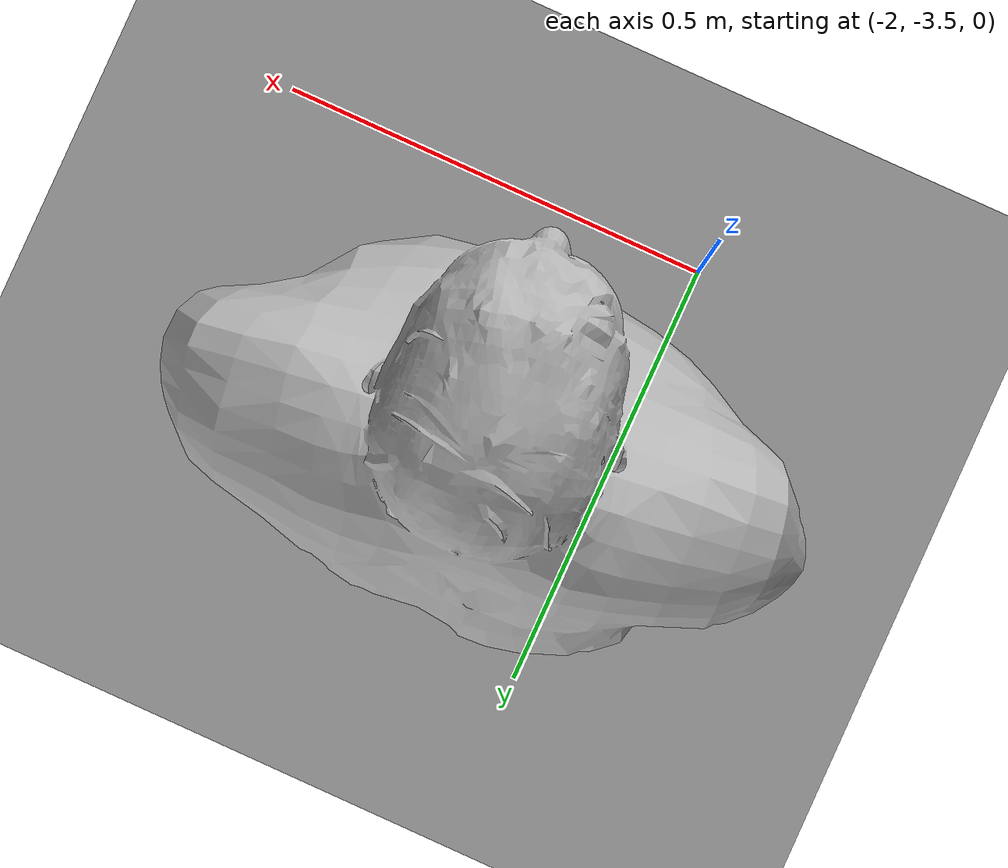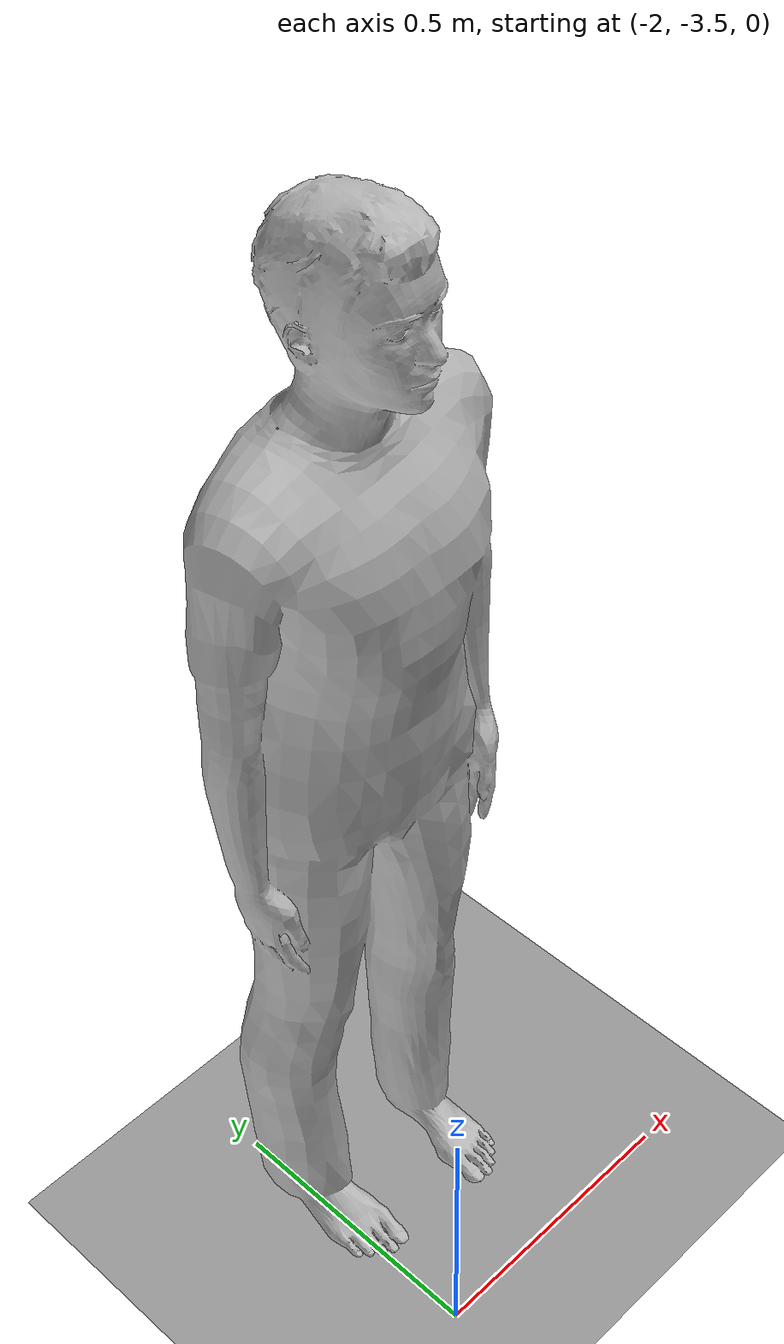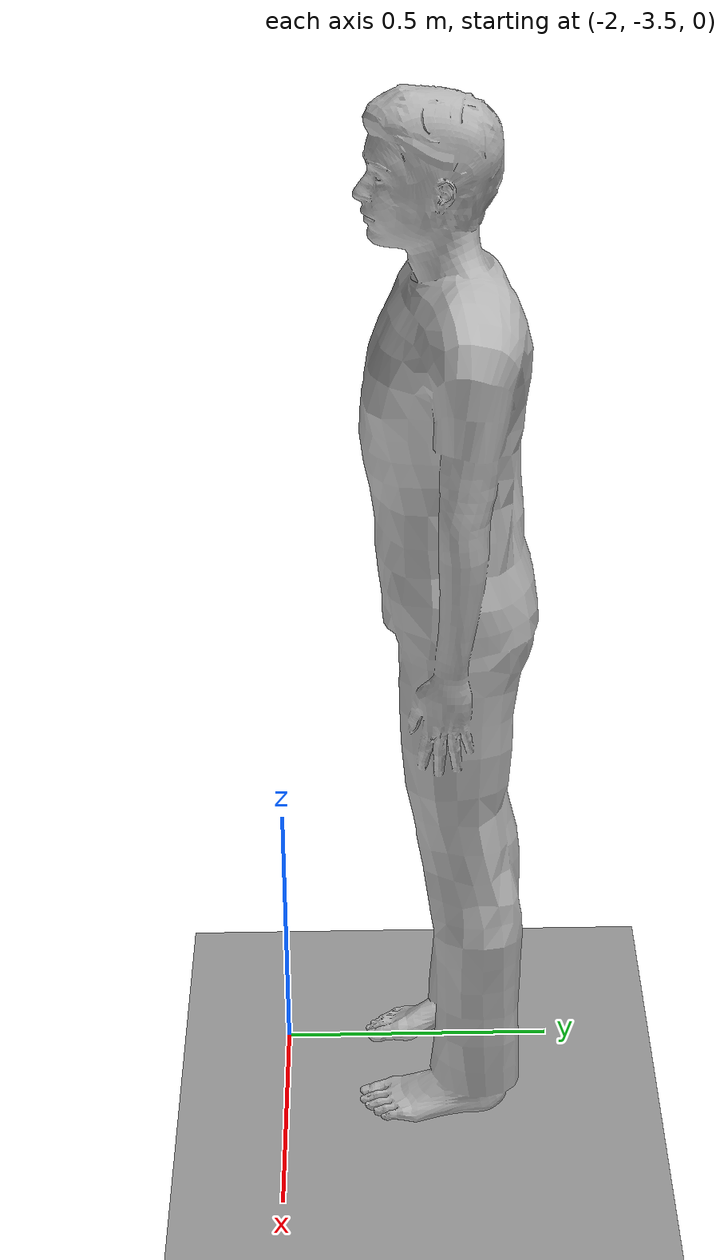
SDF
<sdf version="1.6">
 <world name="default">
  <light name="sun" type="directional">
   <pose>0 0 10 0 -0 0</pose>
   <diffuse>0.8 0.8 0.8 1</diffuse>
   <specular>0.2 0.2 0.2 1</specular>
   <attenuation>
    <range>1000</range>
    <constant>0.9</constant>
    <linear>0.01</linear>
    <quadratic>0.001</quadratic>
   </attenuation>
   <direction>0.5 0.1 -0.9</direction>
  </light>
  <scene><ambient>0.4 0.4 0.4 1</ambient><background>0.7 0.7 0.7 1</background><shadows>1</shadows></scene>
  <physics name="default_physics" default="0" type="ode">
   <max_step_size>0.01</max_step_size>
   <real_time_factor>1</real_time_factor>
   <real_time_update_rate>100</real_time_update_rate>
  </physics>
  <model name="ground_plane_0">
   <static>1</static>
   <link name="link">
    <collision name="collision">
     <geometry><plane><normal>0 0 1</normal><size>100 100</size></plane></geometry>
     <surface><friction><ode><mu>100</mu><mu2>50</mu2></ode></friction></surface>
    </collision>
    <visual name="visual">
     <cast_shadows>0</cast_shadows>
     <geometry><plane><normal>0 0 1</normal><size>100 100</size></plane></geometry>
     <material>
      <script><uri>file://media/materials/scripts/gazebo.material</uri><name>Gazebo/Grey</name></script>
     </material>
    </visual>
    <velocity_decay><linear>0</linear><angular>0</angular></velocity_decay>
   </link>
   <pose>0.497681 0 0 0 -0 0</pose>
  </model>
  <gravity>0 0 -9.8</gravity>
  <magnetic_field>6e-06 2.3e-05 -4.2e-05</magnetic_field>
  <atmosphere type="adiabatic"/>
  <spherical_coordinates>
   <surface_model>EARTH_WGS84</surface_model>
   <latitude_deg>0</latitude_deg>
   <longitude_deg>0</longitude_deg>
   <elevation>0</elevation>
   <heading_deg>0</heading_deg>
  </spherical_coordinates>
  <model name="person_standing">
   <link name="link">
    <inertial>
     <pose>0 -0.1 0.95 0 -0 0</pose>
     <mass>80</mass>
     <inertia><ixx>24.88</ixx><ixy>0</ixy><ixz>0</ixz><iyy>25.73</iyy><iyz>0</iyz><izz>2.48</izz></inertia>
    </inertial>
    <collision name="bottom">
     <pose>0 -0.1 0.01 0 -0 0</pose>
     <geometry><box><size>0.5 0.35 0.02</size></box></geometry>
    </collision>
    <collision name="person">
     <pose>0 0 0.02 0.04 -0 0</pose>
     <geometry><mesh><uri>model://person_standing/meshes/standing.dae</uri><scale>1 1 1</scale></mesh></geometry>
    </collision>
    <visual name="visual">
     <pose>0 0 0.02 0.04 -0 0</pose>
     <geometry><mesh><uri>model://person_standing/meshes/standing.dae</uri><scale>1 1 1</scale></mesh></geometry>
    </visual>
   </link>
   <pose>-1.88186 -3.10895 2.3e-05 -9.4e-05 6.3e-05 -0.000805</pose>
  </model>
 </world>
</sdf>
